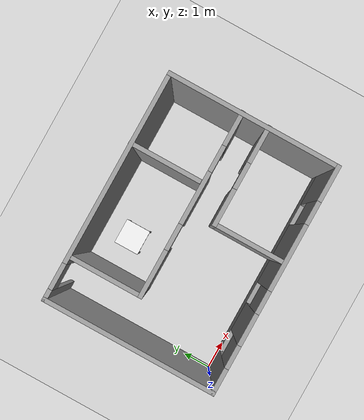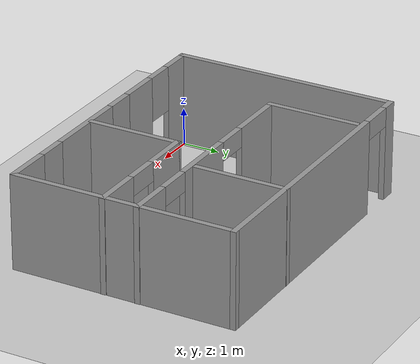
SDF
<sdf version="1.6">
 <world name="default">
  <light name="sun" type="directional">
   <pose>0 0 10 0 -0 0</pose>
   <diffuse>0.8 0.8 0.8 1</diffuse>
   <specular>0.1 0.1 0.1 1</specular>
   <attenuation>
    <range>1000</range>
    <constant>0.9</constant>
    <linear>0.01</linear>
    <quadratic>0.001</quadratic>
   </attenuation>
   <direction>-0.5 0.5 -1</direction>
  </light>
  <model name="ground_plane">
   <static>1</static>
   <link name="link">
    <collision name="collision">
     <geometry><plane><normal>0 0 1</normal><size>100 100</size></plane></geometry>
     <surface><friction><ode><mu>100</mu><mu2>50</mu2></ode></friction></surface>
    </collision>
    <visual name="visual">
     <cast_shadows>0</cast_shadows>
     <geometry><plane><normal>0 0 1</normal><size>100 100</size></plane></geometry>
     <material>
      <script><uri>file://media/materials/scripts/gazebo.material</uri><name>Gazebo/Grey</name></script>
     </material>
    </visual>
   </link>
  </model>
  <gravity>0 0 -9.8</gravity>
  <magnetic_field>6e-06 2.3e-05 -4.2e-05</magnetic_field>
  <atmosphere type="adiabatic"/>
  <physics name="default_physics" default="0" type="ode">
   <max_step_size>0.001</max_step_size>
   <real_time_factor>1</real_time_factor>
   <real_time_update_rate>1000</real_time_update_rate>
  </physics>
  <scene><ambient>0.4 0.4 0.4 1</ambient><background>0.7 0.7 0.7 1</background><shadows>1</shadows></scene>
  <spherical_coordinates>
   <surface_model>EARTH_WGS84</surface_model>
   <latitude_deg>0</latitude_deg>
   <longitude_deg>0</longitude_deg>
   <elevation>0</elevation>
   <heading_deg>0</heading_deg>
  </spherical_coordinates>
  <model name="test_apartment">
   <pose>3.92699 2.88731 0 0 -0 0</pose>
   <link name="Wall_11">
    <pose>-0.006462 -2.92768 0 0 -0 0</pose>
    <visual name="Wall_11_Visual_0">
     <pose>-3.53894 0 1.25 0 -0 0</pose>
     <geometry><box><size>0.922117 0.15 2.5</size></box></geometry>
     <material>
      <script><uri>file://media/materials/scripts/gazebo.material</uri><name>Gazebo/Grey</name></script>
      <ambient>1 1 1 1</ambient>
     </material>
    </visual>
    <collision name="Wall_11_Collision_0">
     <geometry><box><size>0.922117 0.15 2.5</size></box></geometry>
     <pose>-3.53894 0 1.25 0 -0 0</pose>
    </collision>
    <visual name="Wall_11_Visual_1">
     <pose>0.461059 0 0.25 0 -0 0</pose>
     <geometry><box><size>7.07788 0.15 0.5</size></box></geometry>
     <material>
      <script><uri>file://media/materials/scripts/gazebo.material</uri><name>Gazebo/Grey</name></script>
      <ambient>1 1 1 1</ambient>
     </material>
    </visual>
    <collision name="Wall_11_Collision_1">
     <geometry><box><size>7.07788 0.15 0.5</size></box></geometry>
     <pose>0.461059 0 0.25 0 -0 0</pose>
    </collision>
    <visual name="Wall_11_Visual_2">
     <pose>-1.72734 0 1.5 0 -0 0</pose>
     <geometry><box><size>1.10109 0.15 2</size></box></geometry>
     <material>
      <script><uri>file://media/materials/scripts/gazebo.material</uri><name>Gazebo/Grey</name></script>
      <ambient>1 1 1 1</ambient>
     </material>
    </visual>
    <collision name="Wall_11_Collision_2">
     <geometry><box><size>1.10109 0.15 2</size></box></geometry>
     <pose>-1.72734 0 1.5 0 -0 0</pose>
    </collision>
    <visual name="Wall_11_Visual_3">
     <pose>0.774504 0 1.5 0 -0 0</pose>
     <geometry><box><size>2.30259 0.15 2</size></box></geometry>
     <material>
      <script><uri>file://media/materials/scripts/gazebo.material</uri><name>Gazebo/Grey</name></script>
      <ambient>1 1 1 1</ambient>
     </material>
    </visual>
    <collision name="Wall_11_Collision_3">
     <geometry><box><size>2.30259 0.15 2</size></box></geometry>
     <pose>0.774504 0 1.5 0 -0 0</pose>
    </collision>
    <visual name="Wall_11_Visual_4">
     <pose>3.3629 0 1.5 0 -0 0</pose>
     <geometry><box><size>1.2742 0.15 2</size></box></geometry>
     <material>
      <script><uri>file://media/materials/scripts/gazebo.material</uri><name>Gazebo/Grey</name></script>
      <ambient>1 1 1 1</ambient>
     </material>
    </visual>
    <collision name="Wall_11_Collision_4">
     <geometry><box><size>1.2742 0.15 2</size></box></geometry>
     <pose>3.3629 0 1.5 0 -0 0</pose>
    </collision>
    <visual name="Wall_11_Visual_5">
     <pose>-2.67788 0 1.9 0 -0 0</pose>
     <geometry><box><size>0.8 0.15 1.2</size></box></geometry>
     <material>
      <script><uri>file://media/materials/scripts/gazebo.material</uri><name>Gazebo/Grey</name></script>
      <ambient>1 1 1 1</ambient>
     </material>
    </visual>
    <collision name="Wall_11_Collision_5">
     <geometry><box><size>0.8 0.15 1.2</size></box></geometry>
     <pose>-2.67788 0 1.9 0 -0 0</pose>
    </collision>
    <visual name="Wall_11_Visual_6">
     <pose>-0.776789 0 1.9 0 -0 0</pose>
     <geometry><box><size>0.8 0.15 1.2</size></box></geometry>
     <material>
      <script><uri>file://media/materials/scripts/gazebo.material</uri><name>Gazebo/Grey</name></script>
      <ambient>1 1 1 1</ambient>
     </material>
    </visual>
    <collision name="Wall_11_Collision_6">
     <geometry><box><size>0.8 0.15 1.2</size></box></geometry>
     <pose>-0.776789 0 1.9 0 -0 0</pose>
    </collision>
    <visual name="Wall_11_Visual_7">
     <pose>2.3258 0 1.9 0 -0 0</pose>
     <geometry><box><size>0.8 0.15 1.2</size></box></geometry>
     <material>
      <script><uri>file://media/materials/scripts/gazebo.material</uri><name>Gazebo/Grey</name></script>
      <ambient>1 1 1 1</ambient>
     </material>
    </visual>
    <collision name="Wall_11_Collision_7">
     <geometry><box><size>0.8 0.15 1.2</size></box></geometry>
     <pose>2.3258 0 1.9 0 -0 0</pose>
    </collision>
   </link>
   <link name="Wall_12">
    <collision name="Wall_12_Collision">
     <geometry><box><size>6 0.15 2.5</size></box></geometry>
     <pose>0 0 1.25 0 -0 0</pose>
    </collision>
    <visual name="Wall_12_Visual">
     <pose>0 0 1.25 0 -0 0</pose>
     <geometry><box><size>6 0.15 2.5</size></box></geometry>
     <material>
      <script><uri>file://media/materials/scripts/gazebo.material</uri><name>Gazebo/Grey</name></script>
      <ambient>1 1 1 1</ambient>
     </material>
    </visual>
    <pose>3.91854 -0.002684 0 0 -0 1.5708</pose>
   </link>
   <link name="Wall_13">
    <pose>-0.006462 2.92232 0 0 -0 3.14159</pose>
    <visual name="Wall_13_Visual_0">
     <pose>-0.665532 0 1.25 0 -0 0</pose>
     <geometry><box><size>6.66894 0.15 2.5</size></box></geometry>
     <material>
      <script><uri>file://media/materials/scripts/gazebo.material</uri><name>Gazebo/Grey</name></script>
      <ambient>1 1 1 1</ambient>
     </material>
    </visual>
    <collision name="Wall_13_Collision_0">
     <geometry><box><size>6.66894 0.15 2.5</size></box></geometry>
     <pose>-0.665532 0 1.25 0 -0 0</pose>
    </collision>
    <visual name="Wall_13_Visual_1">
     <pose>3.78447 0 1.25 0 -0 0</pose>
     <geometry><box><size>0.431064 0.15 2.5</size></box></geometry>
     <material>
      <script><uri>file://media/materials/scripts/gazebo.material</uri><name>Gazebo/Grey</name></script>
      <ambient>1 1 1 1</ambient>
     </material>
    </visual>
    <collision name="Wall_13_Collision_1">
     <geometry><box><size>0.431064 0.15 2.5</size></box></geometry>
     <pose>3.78447 0 1.25 0 -0 0</pose>
    </collision>
    <visual name="Wall_13_Visual_2">
     <pose>3.11894 0 2.25 0 -0 0</pose>
     <geometry><box><size>0.9 0.15 0.5</size></box></geometry>
     <material>
      <script><uri>file://media/materials/scripts/gazebo.material</uri><name>Gazebo/Grey</name></script>
      <ambient>1 1 1 1</ambient>
     </material>
    </visual>
    <collision name="Wall_13_Collision_2">
     <geometry><box><size>0.9 0.15 0.5</size></box></geometry>
     <pose>3.11894 0 2.25 0 -0 0</pose>
    </collision>
   </link>
   <link name="Wall_14">
    <collision name="Wall_14_Collision">
     <geometry><box><size>6 0.15 2.5</size></box></geometry>
     <pose>0 0 1.25 0 -0 0</pose>
    </collision>
    <visual name="Wall_14_Visual">
     <pose>0 0 1.25 0 -0 0</pose>
     <geometry><box><size>6 0.15 2.5</size></box></geometry>
     <material>
      <script><uri>file://media/materials/scripts/gazebo.material</uri><name>Gazebo/Grey</name></script>
      <ambient>1 1 1 1</ambient>
     </material>
    </visual>
    <pose>-3.93146 -0.002684 0 0 0 -1.5708</pose>
   </link>
   <link name="Wall_18">
    <pose>2.25646 -0.494284 0 0 -0 3.14159</pose>
    <visual name="Wall_18_Visual_0">
     <pose>-1.10102 0 1.25 0 -0 0</pose>
     <geometry><box><size>1.29796 0.15 2.5</size></box></geometry>
     <material>
      <script><uri>file://media/materials/scripts/gazebo.material</uri><name>Gazebo/Grey</name></script>
      <ambient>1 1 1 1</ambient>
     </material>
    </visual>
    <collision name="Wall_18_Collision_0">
     <geometry><box><size>1.29796 0.15 2.5</size></box></geometry>
     <pose>-1.10102 0 1.25 0 -0 0</pose>
    </collision>
    <visual name="Wall_18_Visual_1">
     <pose>1.09898 0 1.25 0 -0 0</pose>
     <geometry><box><size>1.30204 0.15 2.5</size></box></geometry>
     <material>
      <script><uri>file://media/materials/scripts/gazebo.material</uri><name>Gazebo/Grey</name></script>
      <ambient>1 1 1 1</ambient>
     </material>
    </visual>
    <collision name="Wall_18_Collision_1">
     <geometry><box><size>1.30204 0.15 2.5</size></box></geometry>
     <pose>1.09898 0 1.25 0 -0 0</pose>
    </collision>
    <visual name="Wall_18_Visual_2">
     <pose>-0.002037 0 2.25 0 -0 0</pose>
     <geometry><box><size>0.9 0.15 0.5</size></box></geometry>
     <material>
      <script><uri>file://media/materials/scripts/gazebo.material</uri><name>Gazebo/Grey</name></script>
      <ambient>1 1 1 1</ambient>
     </material>
    </visual>
    <collision name="Wall_18_Collision_2">
     <geometry><box><size>0.9 0.15 0.5</size></box></geometry>
     <pose>-0.002037 0 2.25 0 -0 0</pose>
    </collision>
   </link>
   <link name="Wall_19">
    <collision name="Wall_19_Collision">
     <geometry><box><size>2.5 0.15 2.5</size></box></geometry>
     <pose>0 0 1.25 0 -0 0</pose>
    </collision>
    <visual name="Wall_19_Visual">
     <pose>0 0 1.25 0 -0 0</pose>
     <geometry><box><size>2.5 0.15 2.5</size></box></geometry>
     <material>
      <script><uri>file://media/materials/scripts/gazebo.material</uri><name>Gazebo/Grey</name></script>
      <ambient>1 1 1 1</ambient>
     </material>
    </visual>
    <pose>0.581462 -1.66928 0 0 0 -1.5708</pose>
   </link>
   <link name="Wall_21">
    <pose>0.756462 0.418241 0 0 -0 3.14159</pose>
    <visual name="Wall_21_Visual_0">
     <pose>-2.64664 0 1.25 0 -0 0</pose>
     <geometry><box><size>1.20671 0.15 2.5</size></box></geometry>
     <material>
      <script><uri>file://media/materials/scripts/gazebo.material</uri><name>Gazebo/Grey</name></script>
      <ambient>1 1 1 1</ambient>
     </material>
    </visual>
    <collision name="Wall_21_Collision_0">
     <geometry><box><size>1.20671 0.15 2.5</size></box></geometry>
     <pose>-2.64664 0 1.25 0 -0 0</pose>
    </collision>
    <visual name="Wall_21_Visual_1">
     <pose>-0.232107 0 1.25 0 -0 0</pose>
     <geometry><box><size>1.82237 0.15 2.5</size></box></geometry>
     <material>
      <script><uri>file://media/materials/scripts/gazebo.material</uri><name>Gazebo/Grey</name></script>
      <ambient>1 1 1 1</ambient>
     </material>
    </visual>
    <collision name="Wall_21_Collision_1">
     <geometry><box><size>1.82237 0.15 2.5</size></box></geometry>
     <pose>-0.232107 0 1.25 0 -0 0</pose>
    </collision>
    <visual name="Wall_21_Visual_2">
     <pose>2.41454 0 1.25 0 -0 0</pose>
     <geometry><box><size>1.67092 0.15 2.5</size></box></geometry>
     <material>
      <script><uri>file://media/materials/scripts/gazebo.material</uri><name>Gazebo/Grey</name></script>
      <ambient>1 1 1 1</ambient>
     </material>
    </visual>
    <collision name="Wall_21_Collision_2">
     <geometry><box><size>1.67092 0.15 2.5</size></box></geometry>
     <pose>2.41454 0 1.25 0 -0 0</pose>
    </collision>
    <visual name="Wall_21_Visual_3">
     <pose>-1.59329 0 2.25 0 -0 0</pose>
     <geometry><box><size>0.9 0.15 0.5</size></box></geometry>
     <material>
      <script><uri>file://media/materials/scripts/gazebo.material</uri><name>Gazebo/Grey</name></script>
      <ambient>1 1 1 1</ambient>
     </material>
    </visual>
    <collision name="Wall_21_Collision_3">
     <geometry><box><size>0.9 0.15 0.5</size></box></geometry>
     <pose>-1.59329 0 2.25 0 -0 0</pose>
    </collision>
    <visual name="Wall_21_Visual_4">
     <pose>1.12908 0 2.25 0 -0 0</pose>
     <geometry><box><size>0.9 0.15 0.5</size></box></geometry>
     <material>
      <script><uri>file://media/materials/scripts/gazebo.material</uri><name>Gazebo/Grey</name></script>
      <ambient>1 1 1 1</ambient>
     </material>
    </visual>
    <collision name="Wall_21_Collision_4">
     <geometry><box><size>0.9 0.15 0.5</size></box></geometry>
     <pose>1.12908 0 2.25 0 -0 0</pose>
    </collision>
   </link>
   <link name="Wall_22">
    <collision name="Wall_22_Collision">
     <geometry><box><size>2.5 0.15 2.5</size></box></geometry>
     <pose>0 0 1.25 0 -0 0</pose>
    </collision>
    <visual name="Wall_22_Visual">
     <pose>0 0 1.25 0 -0 0</pose>
     <geometry><box><size>2.5 0.15 2.5</size></box></geometry>
     <material>
      <script><uri>file://media/materials/scripts/gazebo.material</uri><name>Gazebo/Grey</name></script>
      <ambient>1 1 1 1</ambient>
     </material>
    </visual>
    <pose>-2.41854 1.59324 0 0 -0 1.5708</pose>
   </link>
   <link name="Wall_24">
    <collision name="Wall_24_Collision">
     <geometry><box><size>2.5 0.15 2.5</size></box></geometry>
     <pose>0 0 1.25 0 -0 0</pose>
    </collision>
    <visual name="Wall_24_Visual">
     <pose>0 0 1.25 0 -0 0</pose>
     <geometry><box><size>2.5 0.15 2.5</size></box></geometry>
     <material>
      <script><uri>file://media/materials/scripts/gazebo.material</uri><name>Gazebo/Grey</name></script>
      <ambient>1 1 1 1</ambient>
     </material>
    </visual>
    <pose>1.49806 1.75269 0 0 0 -1.5708</pose>
   </link>
   <static>1</static>
  </model>
  <model name="table_ikea_bjursta">
   <link name="table_top_link">
    <inertial>
     <pose>0 0 0.338095 0 -0 0</pose>
     <mass>21</mass>
     <inertia><ixx>3.4229</ixx><ixy>0</ixy><ixz>0</ixz><iyy>3.4229</iyy><iyz>0</iyz><izz>4.82335</izz></inertia>
    </inertial>
    <visual name="table_top_link_visual">
     <pose>0 0 0.72 0 -0 0</pose>
     <geometry><box><size>0.9 0.9 0.04</size></box></geometry>
     <material>
      <script><name>Gazebo/White</name><uri>file://media/materials/scripts/gazebo.material</uri></script>
      <ambient>1 1 1 1</ambient>
      <diffuse>1 1 1 1</diffuse>
      <specular>0 0 0 1</specular>
      <emissive>0 0 0 1</emissive>
     </material>
    </visual>
    <visual name="table_top_link_fixed_joint_lump__lath_left_back_link_visual_1">
     <pose>-0.43 0 0.665 0 -0 0</pose>
     <geometry><box><size>0.02 0.77 0.07</size></box></geometry>
    </visual>
    <visual name="table_top_link_fixed_joint_lump__lath_left_front_link_visual_2">
     <pose>0.43 0 0.665 0 -0 0</pose>
     <geometry><box><size>0.02 0.77 0.07</size></box></geometry>
    </visual>
    <visual name="table_top_link_fixed_joint_lump__lath_right_back_link_visual_3">
     <pose>0 -0.43 0.665 0 -0 0</pose>
     <geometry><box><size>0.77 0.02 0.07</size></box></geometry>
    </visual>
    <visual name="table_top_link_fixed_joint_lump__lath_right_front_link_visual_4">
     <pose>0 0.43 0.665 0 -0 0</pose>
     <geometry><box><size>0.77 0.02 0.07</size></box></geometry>
    </visual>
    <visual name="table_top_link_fixed_joint_lump__leg_left_back_link_visual_5">
     <pose>-0.4125 0.4125 0.37 0 -0 0</pose>
     <geometry><box><size>0.055 0.055 0.7</size></box></geometry>
    </visual>
    <visual name="table_top_link_fixed_joint_lump__leg_left_front_link_visual_6">
     <pose>0.4125 0.4125 0.37 0 -0 0</pose>
     <geometry><box><size>0.055 0.055 0.7</size></box></geometry>
    </visual>
    <visual name="table_top_link_fixed_joint_lump__leg_right_back_link_visual_7">
     <pose>-0.4125 -0.4125 0.37 0 -0 0</pose>
     <geometry><box><size>0.055 0.055 0.7</size></box></geometry>
    </visual>
    <visual name="table_top_link_fixed_joint_lump__leg_right_front_link_visual_8">
     <pose>0.4125 -0.4125 0.37 0 -0 0</pose>
     <geometry><box><size>0.055 0.055 0.7</size></box></geometry>
    </visual>
    <collision name="table_top_link_collision">
     <pose>0 0 0.72 0 -0 0</pose>
     <geometry><box><size>0.9 0.9 0.04</size></box></geometry>
     <surface>
      <friction>
       <ode><mu>50</mu><mu2>50</mu2><fdir1>0 0 0</fdir1><slip1>0</slip1><slip2>0</slip2></ode>
       <torsional>
        <coefficient>1</coefficient>
        <patch_radius>0</patch_radius>
        <surface_radius>0</surface_radius>
        <use_patch_radius>1</use_patch_radius>
        <ode><slip>0</slip></ode>
       </torsional>
      </friction>
      <bounce><restitution_coefficient>0</restitution_coefficient><threshold>1e+06</threshold></bounce>
      <contact>
       <collide_without_contact>0</collide_without_contact>
       <collide_without_contact_bitmask>1</collide_without_contact_bitmask>
       <collide_bitmask>1</collide_bitmask>
       <ode>
        <soft_cfm>0</soft_cfm>
        <soft_erp>0.2</soft_erp>
        <kp>1e+06</kp>
        <kd>1</kd>
        <max_vel>0.01</max_vel>
        <min_depth>0</min_depth>
       </ode>
       <bullet>
        <split_impulse>1</split_impulse>
        <split_impulse_penetration_threshold>-0.01</split_impulse_penetration_threshold>
        <soft_cfm>0</soft_cfm>
        <soft_erp>0.2</soft_erp>
        <kp>1e+06</kp>
        <kd>1</kd>
       </bullet>
      </contact>
     </surface>
    </collision>
    <collision name="table_top_link_fixed_joint_lump__lath_left_front_link_collision_2">
     <pose>0.43 0 0.665 0 -0 0</pose>
     <geometry><box><size>0.02 0.77 0.07</size></box></geometry>
     <surface>
      <friction>
       <ode><mu>1</mu><mu2>1</mu2><fdir1>0 0 0</fdir1><slip1>0</slip1><slip2>0</slip2></ode>
       <torsional>
        <coefficient>1</coefficient>
        <patch_radius>0</patch_radius>
        <surface_radius>0</surface_radius>
        <use_patch_radius>1</use_patch_radius>
        <ode><slip>0</slip></ode>
       </torsional>
      </friction>
      <bounce><restitution_coefficient>0</restitution_coefficient><threshold>1e+06</threshold></bounce>
      <contact>
       <collide_without_contact>0</collide_without_contact>
       <collide_without_contact_bitmask>1</collide_without_contact_bitmask>
       <collide_bitmask>1</collide_bitmask>
       <ode>
        <soft_cfm>0</soft_cfm>
        <soft_erp>0.2</soft_erp>
        <kp>1e+13</kp>
        <kd>1</kd>
        <max_vel>0.01</max_vel>
        <min_depth>0</min_depth>
       </ode>
       <bullet>
        <split_impulse>1</split_impulse>
        <split_impulse_penetration_threshold>-0.01</split_impulse_penetration_threshold>
        <soft_cfm>0</soft_cfm>
        <soft_erp>0.2</soft_erp>
        <kp>1e+13</kp>
        <kd>1</kd>
       </bullet>
      </contact>
     </surface>
    </collision>
    <collision name="table_top_link_fixed_joint_lump__lath_left_back_link_collision_1">
     <pose>-0.43 0 0.665 0 -0 0</pose>
     <geometry><box><size>0.02 0.77 0.07</size></box></geometry>
     <surface>
      <friction>
       <ode><mu>1</mu><mu2>1</mu2><fdir1>0 0 0</fdir1><slip1>0</slip1><slip2>0</slip2></ode>
       <torsional>
        <coefficient>1</coefficient>
        <patch_radius>0</patch_radius>
        <surface_radius>0</surface_radius>
        <use_patch_radius>1</use_patch_radius>
        <ode><slip>0</slip></ode>
       </torsional>
      </friction>
      <bounce><restitution_coefficient>0</restitution_coefficient><threshold>1e+06</threshold></bounce>
      <contact>
       <collide_without_contact>0</collide_without_contact>
       <collide_without_contact_bitmask>1</collide_without_contact_bitmask>
       <collide_bitmask>1</collide_bitmask>
       <ode>
        <soft_cfm>0</soft_cfm>
        <soft_erp>0.2</soft_erp>
        <kp>1e+13</kp>
        <kd>1</kd>
        <max_vel>0.01</max_vel>
        <min_depth>0</min_depth>
       </ode>
       <bullet>
        <split_impulse>1</split_impulse>
        <split_impulse_penetration_threshold>-0.01</split_impulse_penetration_threshold>
        <soft_cfm>0</soft_cfm>
        <soft_erp>0.2</soft_erp>
        <kp>1e+13</kp>
        <kd>1</kd>
       </bullet>
      </contact>
     </surface>
    </collision>
    <collision name="table_top_link_fixed_joint_lump__lath_right_front_link_collision_4">
     <pose>0 0.43 0.665 0 -0 0</pose>
     <geometry><box><size>0.77 0.02 0.07</size></box></geometry>
     <surface>
      <friction>
       <ode><mu>1</mu><mu2>1</mu2><fdir1>0 0 0</fdir1><slip1>0</slip1><slip2>0</slip2></ode>
       <torsional>
        <coefficient>1</coefficient>
        <patch_radius>0</patch_radius>
        <surface_radius>0</surface_radius>
        <use_patch_radius>1</use_patch_radius>
        <ode><slip>0</slip></ode>
       </torsional>
      </friction>
      <bounce><restitution_coefficient>0</restitution_coefficient><threshold>1e+06</threshold></bounce>
      <contact>
       <collide_without_contact>0</collide_without_contact>
       <collide_without_contact_bitmask>1</collide_without_contact_bitmask>
       <collide_bitmask>1</collide_bitmask>
       <ode>
        <soft_cfm>0</soft_cfm>
        <soft_erp>0.2</soft_erp>
        <kp>1e+13</kp>
        <kd>1</kd>
        <max_vel>0.01</max_vel>
        <min_depth>0</min_depth>
       </ode>
       <bullet>
        <split_impulse>1</split_impulse>
        <split_impulse_penetration_threshold>-0.01</split_impulse_penetration_threshold>
        <soft_cfm>0</soft_cfm>
        <soft_erp>0.2</soft_erp>
        <kp>1e+13</kp>
        <kd>1</kd>
       </bullet>
      </contact>
     </surface>
    </collision>
    <collision name="table_top_link_fixed_joint_lump__lath_right_back_link_collision_3">
     <pose>0 -0.43 0.665 0 -0 0</pose>
     <geometry><box><size>0.77 0.02 0.07</size></box></geometry>
     <surface>
      <friction>
       <ode><mu>1</mu><mu2>1</mu2><fdir1>0 0 0</fdir1><slip1>0</slip1><slip2>0</slip2></ode>
       <torsional>
        <coefficient>1</coefficient>
        <patch_radius>0</patch_radius>
        <surface_radius>0</surface_radius>
        <use_patch_radius>1</use_patch_radius>
        <ode><slip>0</slip></ode>
       </torsional>
      </friction>
      <bounce><restitution_coefficient>0</restitution_coefficient><threshold>1e+06</threshold></bounce>
      <contact>
       <collide_without_contact>0</collide_without_contact>
       <collide_without_contact_bitmask>1</collide_without_contact_bitmask>
       <collide_bitmask>1</collide_bitmask>
       <ode>
        <soft_cfm>0</soft_cfm>
        <soft_erp>0.2</soft_erp>
        <kp>1e+13</kp>
        <kd>1</kd>
        <max_vel>0.01</max_vel>
        <min_depth>0</min_depth>
       </ode>
       <bullet>
        <split_impulse>1</split_impulse>
        <split_impulse_penetration_threshold>-0.01</split_impulse_penetration_threshold>
        <soft_cfm>0</soft_cfm>
        <soft_erp>0.2</soft_erp>
        <kp>1e+13</kp>
        <kd>1</kd>
       </bullet>
      </contact>
     </surface>
    </collision>
    <collision name="table_top_link_fixed_joint_lump__leg_left_back_link_collision_5">
     <pose>-0.4125 0.4125 0.37 0 -0 0</pose>
     <geometry><box><size>0.055 0.055 0.7</size></box></geometry>
     <surface>
      <friction>
       <ode><mu>1</mu><mu2>1</mu2><fdir1>0 0 0</fdir1><slip1>0</slip1><slip2>0</slip2></ode>
       <torsional>
        <coefficient>1</coefficient>
        <patch_radius>0</patch_radius>
        <surface_radius>0</surface_radius>
        <use_patch_radius>1</use_patch_radius>
        <ode><slip>0</slip></ode>
       </torsional>
      </friction>
      <bounce><restitution_coefficient>0</restitution_coefficient><threshold>1e+06</threshold></bounce>
      <contact>
       <collide_without_contact>0</collide_without_contact>
       <collide_without_contact_bitmask>1</collide_without_contact_bitmask>
       <collide_bitmask>1</collide_bitmask>
       <ode>
        <soft_cfm>0</soft_cfm>
        <soft_erp>0.2</soft_erp>
        <kp>1e+13</kp>
        <kd>1</kd>
        <max_vel>0.01</max_vel>
        <min_depth>0</min_depth>
       </ode>
       <bullet>
        <split_impulse>1</split_impulse>
        <split_impulse_penetration_threshold>-0.01</split_impulse_penetration_threshold>
        <soft_cfm>0</soft_cfm>
        <soft_erp>0.2</soft_erp>
        <kp>1e+13</kp>
        <kd>1</kd>
       </bullet>
      </contact>
     </surface>
    </collision>
    <collision name="table_top_link_fixed_joint_lump__leg_right_back_link_collision_7">
     <pose>-0.4125 -0.4125 0.37 0 -0 0</pose>
     <geometry><box><size>0.055 0.055 0.7</size></box></geometry>
     <surface>
      <friction>
       <ode><mu>1</mu><mu2>1</mu2><fdir1>0 0 0</fdir1><slip1>0</slip1><slip2>0</slip2></ode>
       <torsional>
        <coefficient>1</coefficient>
        <patch_radius>0</patch_radius>
        <surface_radius>0</surface_radius>
        <use_patch_radius>1</use_patch_radius>
        <ode><slip>0</slip></ode>
       </torsional>
      </friction>
      <bounce><restitution_coefficient>0</restitution_coefficient><threshold>1e+06</threshold></bounce>
      <contact>
       <collide_without_contact>0</collide_without_contact>
       <collide_without_contact_bitmask>1</collide_without_contact_bitmask>
       <collide_bitmask>1</collide_bitmask>
       <ode>
        <soft_cfm>0</soft_cfm>
        <soft_erp>0.2</soft_erp>
        <kp>1e+13</kp>
        <kd>1</kd>
        <max_vel>0.01</max_vel>
        <min_depth>0</min_depth>
       </ode>
       <bullet>
        <split_impulse>1</split_impulse>
        <split_impulse_penetration_threshold>-0.01</split_impulse_penetration_threshold>
        <soft_cfm>0</soft_cfm>
        <soft_erp>0.2</soft_erp>
        <kp>1e+13</kp>
        <kd>1</kd>
       </bullet>
      </contact>
     </surface>
    </collision>
    <collision name="table_top_link_fixed_joint_lump__leg_left_front_link_collision_6">
     <pose>0.4125 0.4125 0.37 0 -0 0</pose>
     <geometry><box><size>0.055 0.055 0.7</size></box></geometry>
     <surface>
      <friction>
       <ode><mu>1</mu><mu2>1</mu2><fdir1>0 0 0</fdir1><slip1>0</slip1><slip2>0</slip2></ode>
       <torsional>
        <coefficient>1</coefficient>
        <patch_radius>0</patch_radius>
        <surface_radius>0</surface_radius>
        <use_patch_radius>1</use_patch_radius>
        <ode><slip>0</slip></ode>
       </torsional>
      </friction>
      <bounce><restitution_coefficient>0</restitution_coefficient><threshold>1e+06</threshold></bounce>
      <contact>
       <collide_without_contact>0</collide_without_contact>
       <collide_without_contact_bitmask>1</collide_without_contact_bitmask>
       <collide_bitmask>1</collide_bitmask>
       <ode>
        <soft_cfm>0</soft_cfm>
        <soft_erp>0.2</soft_erp>
        <kp>1e+13</kp>
        <kd>1</kd>
        <max_vel>0.01</max_vel>
        <min_depth>0</min_depth>
       </ode>
       <bullet>
        <split_impulse>1</split_impulse>
        <split_impulse_penetration_threshold>-0.01</split_impulse_penetration_threshold>
        <soft_cfm>0</soft_cfm>
        <soft_erp>0.2</soft_erp>
        <kp>1e+13</kp>
        <kd>1</kd>
       </bullet>
      </contact>
     </surface>
    </collision>
    <collision name="table_top_link_fixed_joint_lump__leg_right_front_link_collision_8">
     <pose>0.4125 -0.4125 0.37 0 -0 0</pose>
     <geometry><box><size>0.055 0.055 0.7</size></box></geometry>
     <surface>
      <friction>
       <ode><mu>1</mu><mu2>1</mu2><fdir1>0 0 0</fdir1><slip1>0</slip1><slip2>0</slip2></ode>
       <torsional>
        <coefficient>1</coefficient>
        <patch_radius>0</patch_radius>
        <surface_radius>0</surface_radius>
        <use_patch_radius>1</use_patch_radius>
        <ode><slip>0</slip></ode>
       </torsional>
      </friction>
      <bounce><restitution_coefficient>0</restitution_coefficient><threshold>1e+06</threshold></bounce>
      <contact>
       <collide_without_contact>0</collide_without_contact>
       <collide_without_contact_bitmask>1</collide_without_contact_bitmask>
       <collide_bitmask>1</collide_bitmask>
       <ode>
        <soft_cfm>0</soft_cfm>
        <soft_erp>0.2</soft_erp>
        <kp>1e+13</kp>
        <kd>1</kd>
        <max_vel>0.01</max_vel>
        <min_depth>0</min_depth>
       </ode>
       <bullet>
        <split_impulse>1</split_impulse>
        <split_impulse_penetration_threshold>-0.01</split_impulse_penetration_threshold>
        <soft_cfm>0</soft_cfm>
        <soft_erp>0.2</soft_erp>
        <kp>1e+13</kp>
        <kd>1</kd>
       </bullet>
      </contact>
     </surface>
    </collision>
   </link>
   <static>0</static>
   <pose>2.8253 4.60841 -0.020005 7e-06 6e-06 -0</pose>
  </model>
 </world>
</sdf>
